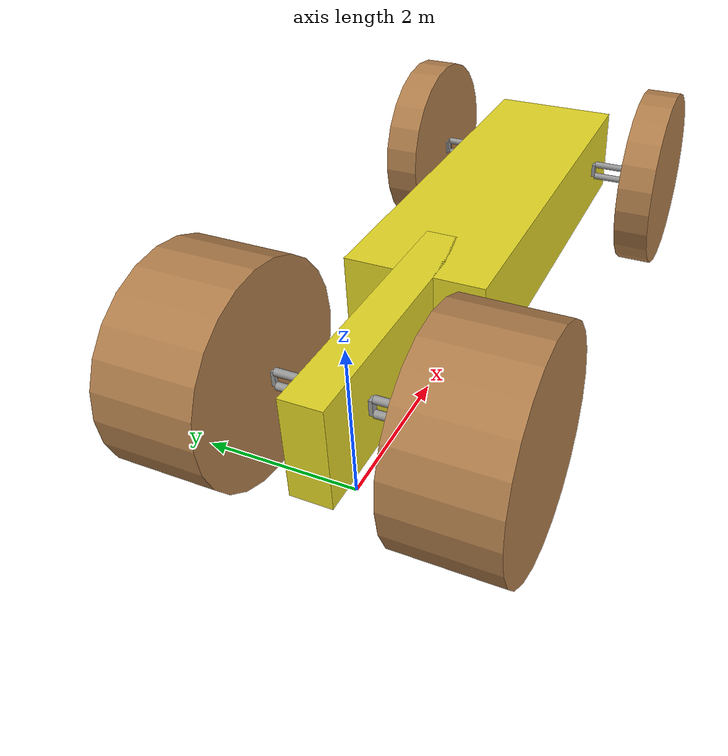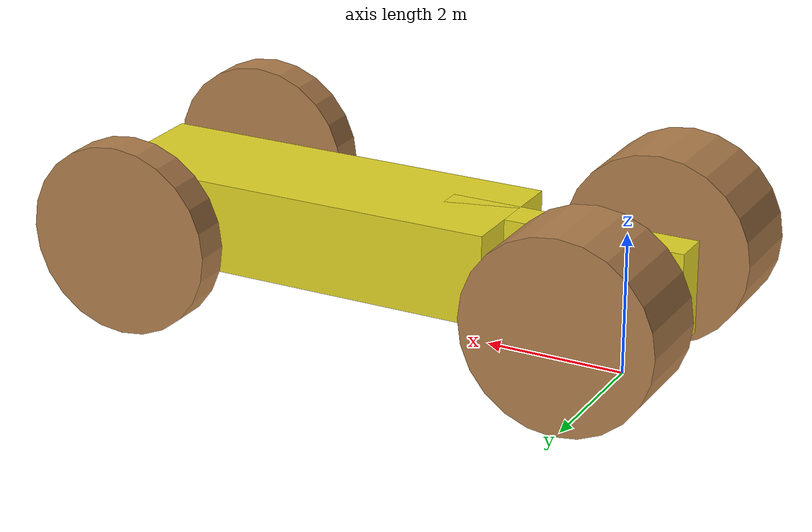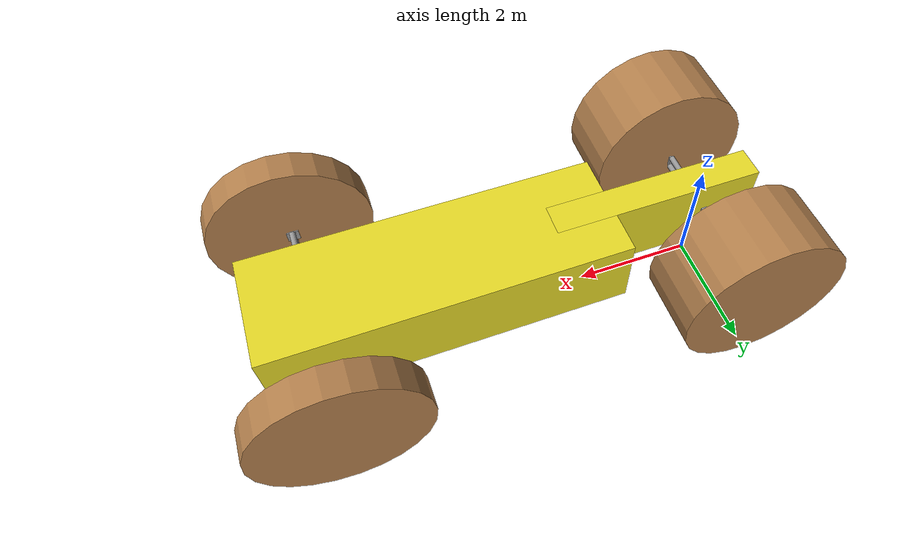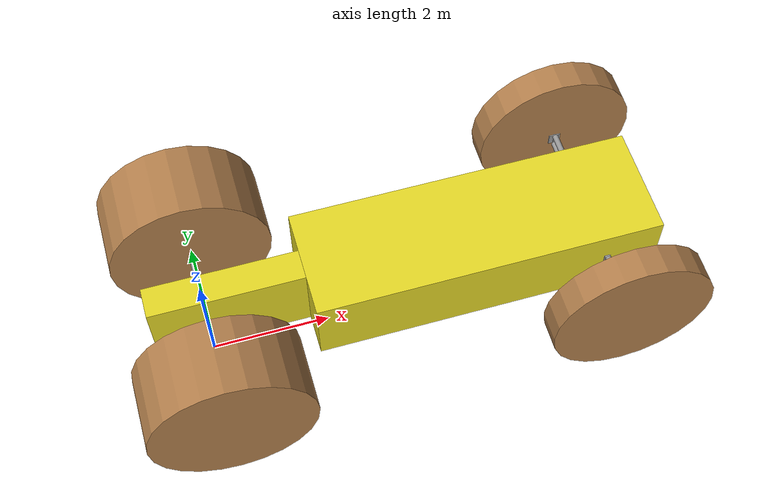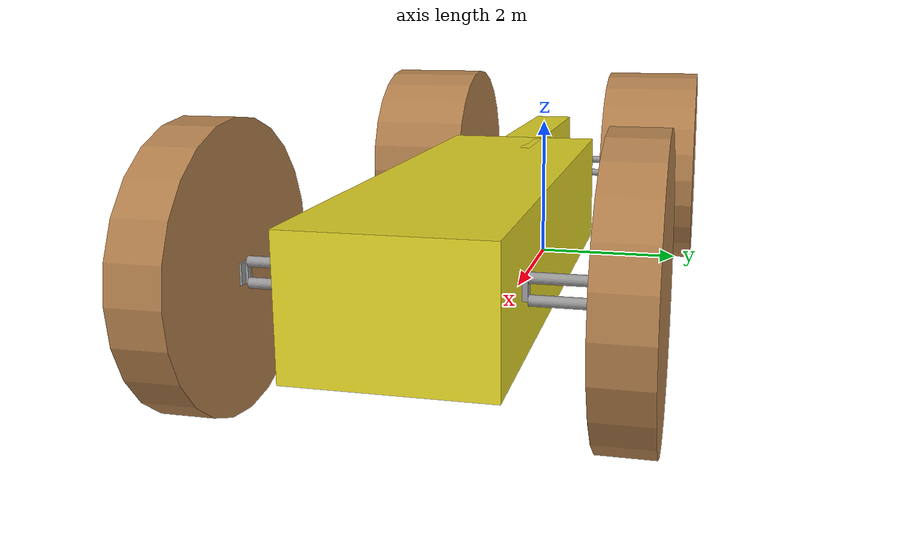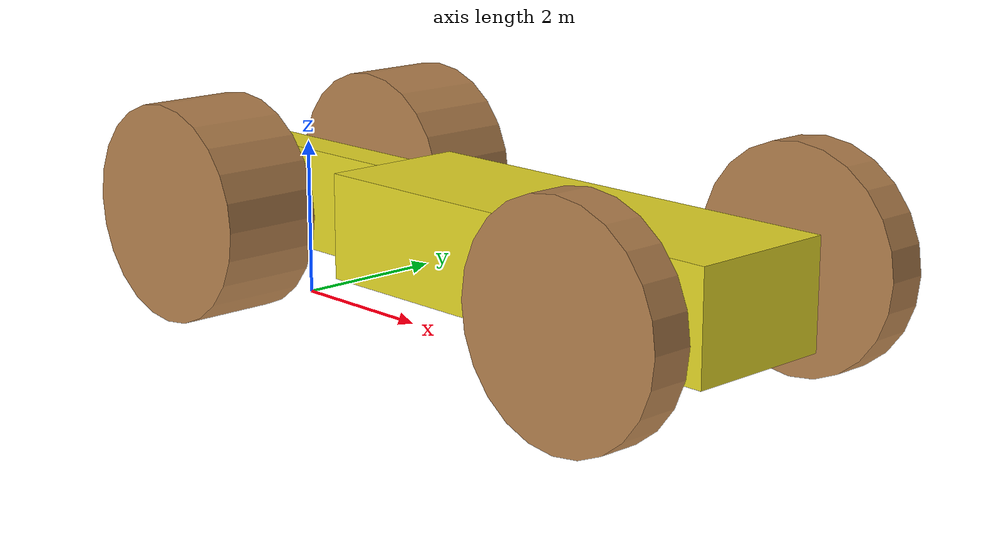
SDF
<?xml version="1.0" ?>

<sdf version="1.5">
  <model name="truck1">

    <!-- Base Chassis -->
    <link name="front_chassis">
      <pose>4.56 0 1.33  0 0 0</pose>
      <inertial>
        <mass>20000</mass>
        <inertia>
          <ixx>100</ixx>
          <iyy>100</iyy>
          <izz>100</izz>
          <ixy>0</ixy>
          <ixz>0</ixz>
          <iyz>0</iyz>
        </inertia>
      </inertial>
      <collision name="collision">
        <geometry>
          <box>
            <size>5.8 1.86 1.3</size>
          </box>
        </geometry>
      </collision>
      <visual name="visual">
        <geometry>
          <box>
            <size>5.8 1.86 1.3</size>
          </box>
        </geometry>
        <material>
          <script>
            <uri>file://media/materials/scripts/gazebo.material</uri>
            <name>Gazebo/Yellow</name>
          </script>
        </material>
      </visual>
    </link>

    <link name="rear_chassis">
      <pose>0.88 0 1.33  0 0 0</pose>
      <inertial>
        <mass>10000</mass>
        <inertia>
          <ixx>100</ixx>
          <iyy>100</iyy>
          <izz>100</izz>
          <ixy>0</ixy>
          <ixz>0</ixz>
          <iyz>0</iyz>
        </inertia>
      </inertial>
      <collision name="collision">
        <geometry>
          <box>
            <size>3.56 0.52 1.3</size>
          </box>
        </geometry>
      </collision>
      <visual name="visual">
        <geometry>
          <box>
            <size>3.56 0.52 1.3</size>
          </box>
        </geometry>
        <material>
          <script>
            <uri>file://media/materials/scripts/gazebo.material</uri>
            <name>Gazebo/Yellow</name>
          </script>
        </material>
      </visual>
    </link>

    <joint name="chassis_join" type="fixed">
      <parent>rear_chassis</parent>
      <child>front_chassis</child>
      <axis>
        <xyz>0 0 0</xyz>
      </axis>
    </joint>

    <!-- Rear wheels -->
    <model name="left_rear_wheel_assy">
      <pose>0 0.26 0 0 0 0</pose>
      <include>
        <uri>model://unsteered_suspension</uri>
      </include>
      <plugin name="drive_left" filename="libgazebo_ros_set_joint.so">
        <jointName>unsteered_suspension::unsteered_wheel_joint</jointName>
        <topicName>chassis_force</topicName>
        <actuationMode>2</actuationMode>
        <scale>20</scale>
        <reversed_direction>0</reversed_direction>
      </plugin>
    </model>

    <joint name="chassis_to_left_rear_wheel" type="fixed">
      <parent>rear_chassis</parent>
      <child>left_rear_wheel_assy::unsteered_suspension::inner_mount</child>
      <axis>
        <xyz>0 0 0</xyz>
      </axis>
    </joint>

    <model name="right_rear_wheel_assy">
      <pose>0 -0.26 0 0 0 3.14159</pose>
      <include>
        <uri>model://unsteered_suspension</uri>
      </include>

      <plugin name="drive_right" filename="libgazebo_ros_set_joint.so">
        <jointName>unsteered_suspension::unsteered_wheel_joint</jointName>
        <topicName>chassis_force</topicName>
        <actuationMode>2</actuationMode>
        <scale>20</scale>
        <reversed_direction>1</reversed_direction>
      </plugin>
    </model>

    <joint name="chassis_to_right_rear_wheel" type="fixed">
      <parent>rear_chassis</parent>
      <child>right_rear_wheel_assy::unsteered_suspension::inner_mount</child>
      <axis>
        <xyz>0 0 0</xyz>
      </axis>
    </joint>

    <!-- Front wheels -->
    <model name="left_front_wheel_assy">
      <pose>6.56 0.93 0 0 0 0</pose>
      <include>
        <uri>model://steered_suspension</uri>
      </include>

      <plugin name="set_left_wheel_angle" filename="libgazebo_ros_set_joint.so">
        <jointName>steered_suspension::steering_joint</jointName>
        <topicName>steer_angle</topicName>
        <actuationMode>1</actuationMode>
        <scale>10000</scale>
      </plugin>
    </model>

    <joint name="chassis_to_left_wheel" type="fixed">
      <parent>front_chassis</parent>
      <child>left_front_wheel_assy::steered_suspension::inner_mount</child>
      <axis>
        <xyz>0 0 0</xyz>
      </axis>
    </joint>

    <model name="right_front_wheel_assy">
      <pose>6.56 -0.93 0 0 0 3.14159</pose>
      <include>
        <uri>model://steered_suspension</uri>
      </include>

      <plugin name="set_right_wheel_angle" filename="libgazebo_ros_set_joint.so">
        <jointName>steered_suspension::steering_joint</jointName>
        <topicName>steer_angle</topicName>
        <actuationMode>1</actuationMode>
        <scale>10000</scale>
      </plugin>
    </model>

    <joint name="chassis_to_right_wheel" type="fixed">
      <parent>front_chassis</parent>
      <child>right_front_wheel_assy::steered_suspension::inner_mount</child>
      <axis>
        <xyz>0 0 0</xyz>
      </axis>
    </joint>

  </model>
</sdf>

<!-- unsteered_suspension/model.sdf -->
<sdf version="1.5">
  <model name="unsteered_suspension">

<!-- Inner Chassis Mount -->
    <link name="inner_mount">
      <pose>0 0.025 1.35  0 0 0</pose>
      <inertial>
        <pose>0 0.025 1.35  0 0 0</pose>
        <mass>10</mass>
        <inertia>
          <ixx>10</ixx>
          <iyy>10</iyy>
          <izz>10</izz>
          <ixy>0</ixy>
          <ixz>0</ixz>
          <iyz>0</iyz>
        </inertia>
      </inertial>
      <collision name="collision">
        <geometry>
          <box>
            <size>0.1 0.05 0.2</size>
          </box>
        </geometry>
      </collision>
      <visual name="visual">
        <geometry>
          <box>
            <size>0.1 0.05 0.2</size>
          </box>
        </geometry>
        <material>
          <script>
            <uri>file://media/materials/scripts/gazebo.material</uri>
            <name>Gazebo/Grey</name>
          </script>
        </material>
      </visual>
    </link>

<!-- upper arm -->
    <link name="upper_suspension_arm">
      <pose>0 0.35 1.45  -1.5707963267948966 0 0</pose>
      <inertial>
        <mass>20</mass>
        <inertia>
          <ixx>20</ixx>
          <iyy>20</iyy>
          <izz>20</izz>
          <ixy>0</ixy>
          <ixz>0</ixz>
          <iyz>0</iyz>
        </inertia>
      </inertial>
      <collision name="collision">
        <geometry>
          <cylinder>
            <radius>0.05</radius>
            <length>0.6</length>
          </cylinder>
        </geometry>
      </collision>
      <visual name="visual">
        <geometry>
          <cylinder>
            <radius>0.05</radius>
            <length>0.6</length>
          </cylinder>
        </geometry>
        <material>
          <script>
            <uri>file://media/materials/scripts/gazebo.material</uri>
            <name>Gazebo/Grey</name>
          </script>
        </material>
      </visual>
    </link>

    <joint name="inner_moount_to_upper_arm" type="revolute">
      <parent>inner_mount</parent>
      <child>upper_suspension_arm</child>
      <pose>0 0 -0.3 0 0 0</pose>
      <axis>
        <xyz>1 0 0</xyz>
        <limit>
          <upper>0.5</upper>
          <lower>-0.5</lower>
        </limit>
        <dynamics>
          <damping>1</damping>
          <spring_stiffness>100000</spring_stiffness>
          <spring_reference>-0.5</spring_reference>
        </dynamics>
      </axis>
    </joint>

    <joint name="wheel_moount_to_upper_arm" type="revolute">
      <parent>wheel_mount</parent>
      <child>upper_suspension_arm</child>
      <pose>0 0 0.3 0 0 0</pose>
      <axis>
        <xyz>1 0 0</xyz>
      </axis>
    </joint>

<!-- lower arm -->
    <link name="lower_suspension_arm">
      <pose>0 0.35 1.25  -1.5707963267948966 0 0</pose>
      <inertial>
        <mass>20</mass>
        <inertia>
          <ixx>20</ixx>
          <iyy>20</iyy>
          <izz>20</izz>
          <ixy>0</ixy>
          <ixz>0</ixz>
          <iyz>0</iyz>
        </inertia>
      </inertial>
      <collision name="collision">
        <geometry>
          <cylinder>
            <radius>0.05</radius>
            <length>0.6</length>
          </cylinder>
        </geometry>
      </collision>
      <visual name="visual">
        <geometry>
          <cylinder>
            <radius>0.05</radius>
            <length>0.6</length>
          </cylinder>
        </geometry>
        <material>
          <script>
            <uri>file://media/materials/scripts/gazebo.material</uri>
            <name>Gazebo/Grey</name>
          </script>
        </material>
      </visual>
    </link>

    <joint name="inner_moount_to_lower_arm" type="revolute">
      <parent>inner_mount</parent>
      <child>lower_suspension_arm</child>
      <pose>0 0 -0.3 0 0 0</pose>
      <axis>
        <xyz>1 0 0</xyz>
        <limit>
          <upper>0.5</upper>
          <lower>-0.5</lower>
        </limit>
      </axis>
    </joint>

    <joint name="wheel_moount_to_lower_arm" type="revolute">
      <parent>wheel_mount</parent>
      <child>lower_suspension_arm</child>
      <pose>-0 0 0.3 0 0 0</pose>
      <axis>
        <xyz>1 0 0</xyz>
      </axis>
    </joint>

<!-- Wheel Mount -->
    <link name="wheel_mount">
      <pose>0 0.675 1.35  0 0 0</pose>
      <inertial>
        <mass>10</mass>
        <inertia>
          <ixx>10</ixx>
          <iyy>10</iyy>
          <izz>10</izz>
          <ixy>0</ixy>
          <ixz>0</ixz>
          <iyz>0</iyz>
        </inertia>
      </inertial>
      <collision name="collision">
        <geometry>
          <box>
            <size>0.05 0.05 0.2</size>
          </box>
        </geometry>
      </collision>
      <visual name="visual">
        <geometry>
          <box>
            <size>0.05 0.05 0.2</size>
          </box>
        </geometry>
        <material>
          <script>
            <uri>file://media/materials/scripts/gazebo.material</uri>
            <name>Gazebo/Grey</name>
          </script>
        </material>
      </visual>
    </link>

<!-- Wheel -->
    <link name="wheel_unsteered">
      <pose>0 1.3575 1.4  -1.5707963267948966 0 0</pose>
      <inertial>
        <mass>2000</mass>
        <inertia>
          <ixx>100</ixx>
          <iyy>100</iyy>
          <izz>100</izz>
          <ixy>0</ixy>
          <ixz>0</ixz>
          <iyz>0</iyz>
        </inertia>
      </inertial>
      <collision name="collision">
        <geometry>
          <cylinder>
            <radius>1.35</radius>
            <length>1.25</length>
          </cylinder>
        </geometry>
      </collision>
      <visual name="visual">
        <geometry>
          <cylinder>
            <radius>1.35</radius>
            <length>1.25</length>
          </cylinder>
        </geometry>
        <material>
          <script>
            <uri>file://media/materials/scripts/gazebo.material</uri>
            <name>Gazebo/Wood</name>
          </script>
        </material>
      </visual>
    </link>

    <joint type="revolute" name="unsteered_wheel_joint">
      <parent>wheel_mount</parent>
      <child>wheel_unsteered</child>
      <axis>
        <xyz>0 0 1</xyz>
      </axis>
    </joint>

  </model>
</sdf>

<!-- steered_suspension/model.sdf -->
<sdf version="1.5">
  <model name="steered_suspension">

<!-- Inner Chassis Mount -->
    <link name="inner_mount">
      <pose>0 0.025 1.35  0 0 0</pose>
      <inertial>
        <pose>0 0.025 1.35  0 0 0</pose>
        <mass>10</mass>
        <inertia>
          <ixx>10</ixx>
          <iyy>10</iyy>
          <izz>10</izz>
          <ixy>0</ixy>
          <ixz>0</ixz>
          <iyz>0</iyz>
        </inertia>
      </inertial>
      <collision name="collision">
        <geometry>
          <box>
            <size>0.1 0.05 0.2</size>
          </box>
        </geometry>
      </collision>
      <visual name="visual">
        <geometry>
          <box>
            <size>0.1 0.05 0.2</size>
          </box>
        </geometry>
        <material>
          <script>
            <uri>file://media/materials/scripts/gazebo.material</uri>
            <name>Gazebo/Grey</name>
          </script>
        </material>
      </visual>
    </link>

<!-- upper arm -->
    <link name="upper_suspension_arm">
      <pose>0 0.35 1.45  -1.5707963267948966 0 0</pose>
      <inertial>
        <mass>20</mass>
        <inertia>
          <ixx>20</ixx>
          <iyy>20</iyy>
          <izz>20</izz>
          <ixy>0</ixy>
          <ixz>0</ixz>
          <iyz>0</iyz>
        </inertia>
      </inertial>
      <collision name="collision">
        <geometry>
          <cylinder>
            <radius>0.05</radius>
            <length>0.6</length>
          </cylinder>
        </geometry>
      </collision>
      <visual name="visual">
        <geometry>
          <cylinder>
            <radius>0.05</radius>
            <length>0.6</length>
          </cylinder>
        </geometry>
        <material>
          <script>
            <uri>file://media/materials/scripts/gazebo.material</uri>
            <name>Gazebo/Grey</name>
          </script>
        </material>
      </visual>
    </link>

    <joint name="inner_moount_to_upper_arm" type="revolute">
      <parent>inner_mount</parent>
      <child>upper_suspension_arm</child>
      <pose>0 0 -0.3 0 0 0</pose>
      <axis>
        <xyz>1 0 0</xyz>
        <limit>
          <upper>0.5</upper>
          <lower>-0.5</lower>
        </limit>
        <dynamics>
          <damping>10000</damping>
          <spring_stiffness>100000</spring_stiffness>
          <spring_reference>-0.5</spring_reference>
        </dynamics>
      </axis>
    </joint>

    <joint name="wheel_moount_to_upper_arm" type="revolute">
      <parent>wheel_mount</parent>
      <child>upper_suspension_arm</child>
      <pose>0 0 0.3 0 0 0</pose>
      <axis>
        <xyz>1 0 0</xyz>
      </axis>
    </joint>

<!-- lower arm -->
    <link name="lower_suspension_arm">
      <pose>0 0.35 1.25  -1.5707963267948966 0 0</pose>
      <inertial>
        <mass>20</mass>
        <inertia>
          <ixx>20</ixx>
          <iyy>20</iyy>
          <izz>20</izz>
          <ixy>0</ixy>
          <ixz>0</ixz>
          <iyz>0</iyz>
        </inertia>
      </inertial>
      <collision name="collision">
        <geometry>
          <cylinder>
            <radius>0.05</radius>
            <length>0.6</length>
          </cylinder>
        </geometry>
      </collision>
      <visual name="visual">
        <geometry>
          <cylinder>
            <radius>0.05</radius>
            <length>0.6</length>
          </cylinder>
        </geometry>
        <material>
          <script>
            <uri>file://media/materials/scripts/gazebo.material</uri>
            <name>Gazebo/Grey</name>
          </script>
        </material>
      </visual>
    </link>

    <joint name="inner_moount_to_lower_arm" type="revolute">
      <parent>inner_mount</parent>
      <child>lower_suspension_arm</child>
      <pose>0 0 -0.3 0 0 0</pose>
      <axis>
        <xyz>1 0 0</xyz>
        <limit>
          <upper>0.5</upper>
          <lower>-0.5</lower>
        </limit>
      </axis>
    </joint>

    <joint name="wheel_moount_to_lower_arm" type="revolute">
      <parent>wheel_mount</parent>
      <child>lower_suspension_arm</child>
      <pose>-0 0 0.3 0 0 0</pose>
      <axis>
        <xyz>1 0 0</xyz>
      </axis>
    </joint>

<!-- Wheel Mount -->
    <link name="wheel_mount">
      <pose>0 0.675 1.35  0 0 0</pose>
      <inertial>
        <mass>10</mass>
        <inertia>
          <ixx>10</ixx>
          <iyy>10</iyy>
          <izz>10</izz>
          <ixy>0</ixy>
          <ixz>0</ixz>
          <iyz>0</iyz>
        </inertia>
      </inertial>
      <collision name="collision">
        <geometry>
          <box>
            <size>0.05 0.05 0.2</size>
          </box>
        </geometry>
      </collision>
      <visual name="visual">
        <geometry>
          <box>
            <size>0.05 0.05 0.2</size>
          </box>
        </geometry>
        <material>
          <script>
            <uri>file://media/materials/scripts/gazebo.material</uri>
            <name>Gazebo/Grey</name>
          </script>
        </material>
      </visual>
    </link>

    <joint type="revolute" name="steering_joint">
      <parent>wheel_mount</parent>
      <child>wheel_bearing</child>
      <axis>
        <xyz>0 0 1</xyz>
        <limit>
          <lower>-0.45</lower>
          <upper>0.45</upper>
        </limit>
        <use_parent_model_frame>true</use_parent_model_frame>
        <dynamics>
          <damping>10</damping>
          <spring_stiffness>100000</spring_stiffness>
          <spring_reference>0</spring_reference>
        </dynamics>
      </axis>
    </joint>

    <link name="wheel_bearing">
      <pose>0 0.685 1.35  0 0 0</pose>
      <inertial>
        <mass>10</mass>
        <inertia>
          <ixx>1</ixx>
          <iyy>1</iyy>
          <izz>1</izz>
          <ixy>0</ixy>
          <ixz>0</ixz>
          <iyz>0</iyz>
        </inertia>
      </inertial>
      <collision name="collision">
        <geometry>
          <box>
            <size>0.2 0.02 0.2</size>
          </box>
        </geometry>
      </collision>
      <visual name="visual">
        <geometry>
          <box>
            <size>0.2 0.02 0.2</size>
          </box>
        </geometry>
        <material>
          <script>
            <uri>file://media/materials/scripts/gazebo.material</uri>
            <name>Gazebo/Grey</name>
          </script>
        </material>
      </visual>
    </link>

    <joint type="revolute" name="bearing_joint">
      <parent>wheel_bearing</parent>
      <child>wheel_steered</child>
      <axis>
        <xyz>0 1 0</xyz>
        <use_parent_model_frame>true</use_parent_model_frame>
      </axis>
    </joint>

<!-- Wheel -->
    <link name="wheel_steered">
      <pose>0 0.95 1.4  -1.5707963267948966 0 0</pose>
      <inertial>
        <mass>20</mass>
        <inertia>
          <ixx>1</ixx>
          <iyy>1</iyy>
          <izz>1</izz>
          <ixy>0</ixy>
          <ixz>0</ixz>
          <iyz>0</iyz>
        </inertia>
      </inertial>
      <collision name="collision">
        <geometry>
          <cylinder>
            <radius>1.35</radius>
            <length>0.5</length>
          </cylinder>
        </geometry>
      </collision>
      <visual name="visual">
        <geometry>
          <cylinder>
            <radius>1.35</radius>
            <length>0.5</length>
          </cylinder>
        </geometry>
        <material>
          <script>
            <uri>file://media/materials/scripts/gazebo.material</uri>
            <name>Gazebo/Wood</name>
          </script>
        </material>
      </visual>
    </link>

  </model>
</sdf>
